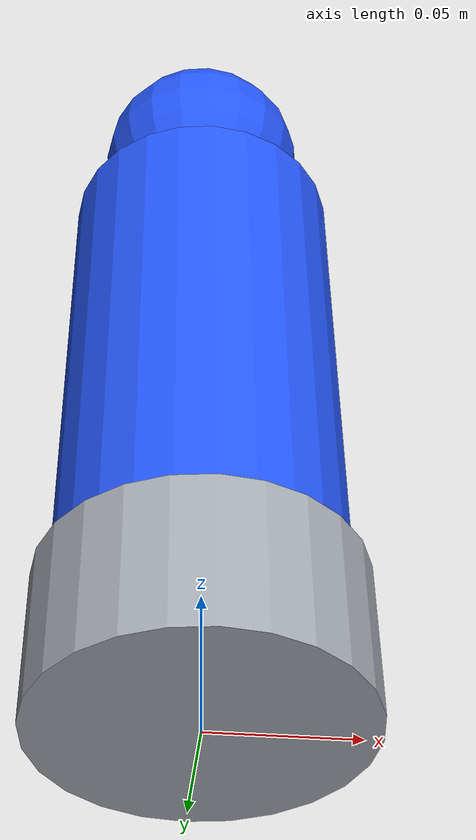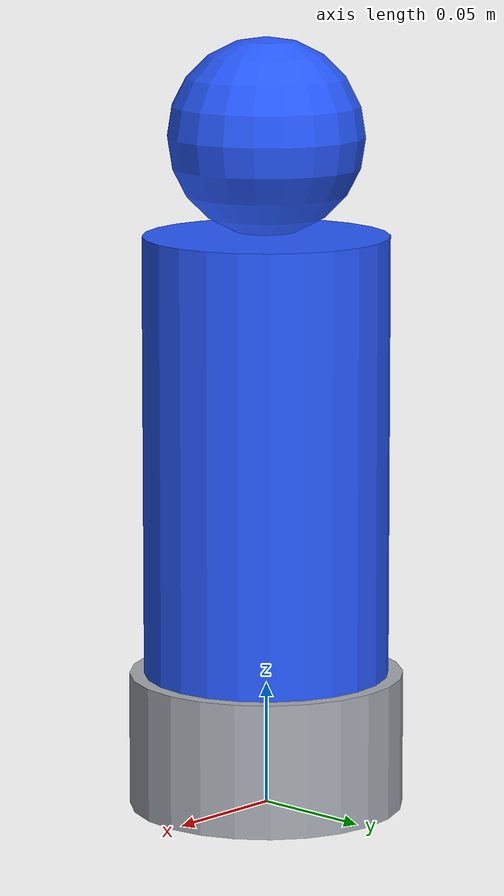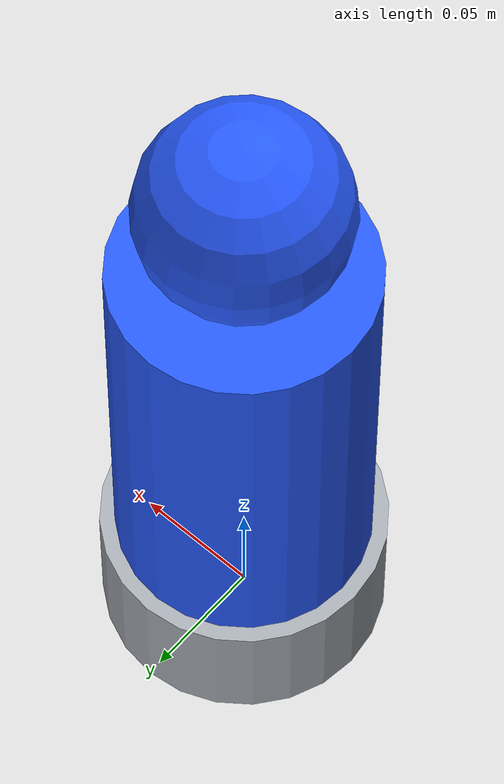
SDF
<?xml version="1.0"?>
<sdf version="1.9">
  <model name="victim">

    <frame name="attachment_point">
      <pose relative_to="base_link">0.056 0 0.0325 0 0 0</pose>
    </frame>

    <link name="base_link">
      <inertial>
        <pose>0 0 0.11 0 0 0</pose>
        <mass>0.22</mass>
        <inertia>
          <ixx>0.00179</ixx><iyy>0.00179</iyy><izz>0.00028</izz>
          <ixy>0</ixy><ixz>0</ixz><iyz>0</iyz>
        </inertia>
      </inertial>

      <!-- steel attachment ring: bottom 55 mm -->
      <collision name="attachment_ring_collision">
        <pose>0 0 0.0275 0 0 0</pose>
        <geometry><cylinder><radius>0.056</radius><length>0.055</length></cylinder></geometry>
        <surface><friction><ode><mu>0.8</mu><mu2>0.8</mu2></ode></friction></surface>
      </collision>
      <visual name="attachment_ring">
        <pose>0 0 0.0275 0 0 0</pose>
        <geometry><cylinder><radius>0.056</radius><length>0.055</length></cylinder></geometry>
        <material>
          <ambient>0.55 0.57 0.60 1</ambient>
          <diffuse>0.65 0.67 0.70 1</diffuse>
          <specular>0.9 0.9 0.9 1</specular>
        </material>
      </visual>

      <!-- torso -->
      <collision name="torso_collision">
        <pose>0 0 0.145 0 0 0</pose>
        <geometry><cylinder><radius>0.05</radius><length>0.18</length></cylinder></geometry>
      </collision>
      <visual name="torso">
        <pose>0 0 0.145 0 0 0</pose>
        <geometry><cylinder><radius>0.05</radius><length>0.18</length></cylinder></geometry>
        <material>
          <ambient>0.10 0.25 0.85 1</ambient>
          <diffuse>0.15 0.35 1.00 1</diffuse>
        </material>
      </visual>

      <!-- head -->
      <collision name="head_collision">
        <pose>0 0 0.275 0 0 0</pose>
        <geometry><sphere><radius>0.04</radius></sphere></geometry>
      </collision>
      <visual name="head">
        <pose>0 0 0.275 0 0 0</pose>
        <geometry><sphere><radius>0.04</radius></sphere></geometry>
        <material>
          <ambient>0.10 0.25 0.85 1</ambient>
          <diffuse>0.15 0.35 1.00 1</diffuse>
        </material>
      </visual>
    </link>

  </model>
</sdf>
